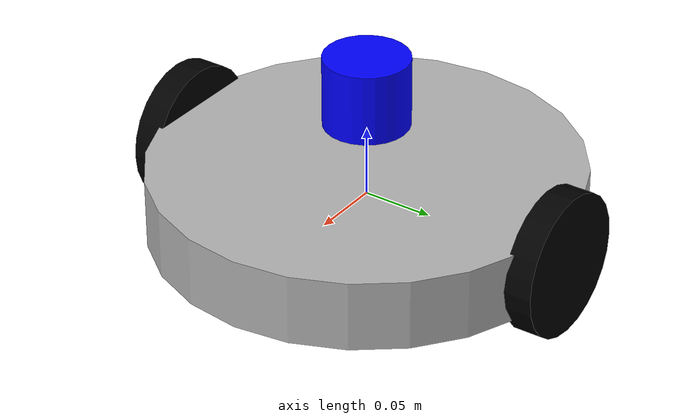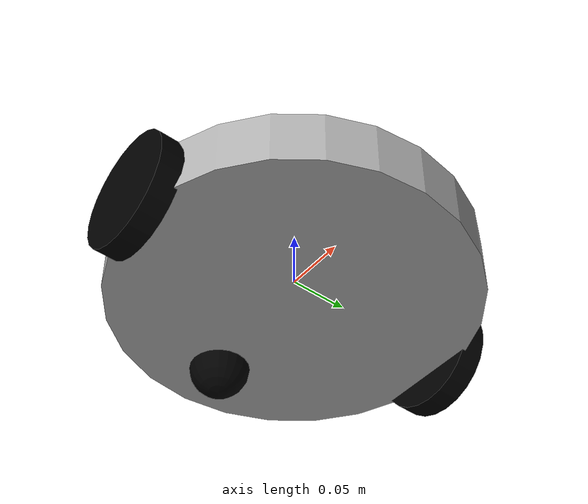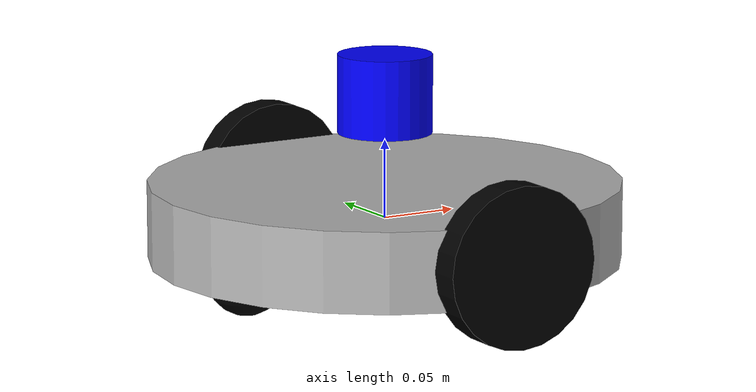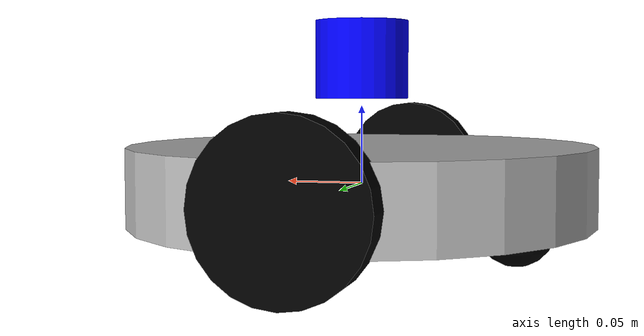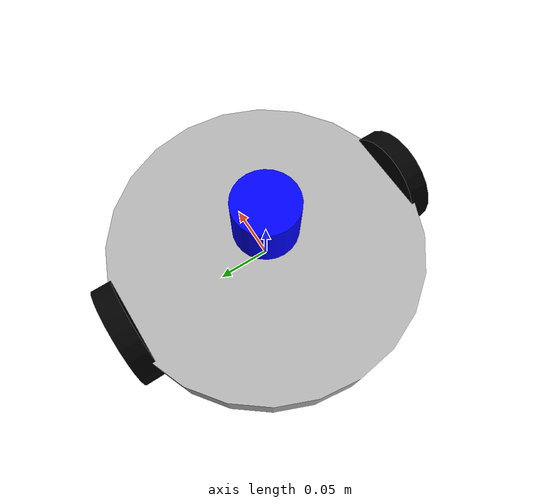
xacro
<?xml version="1.0"?>
<robot name="patrol_bot" xmlns:xacro="http://www.ros.org/wiki/xacro">

  <!-- Materials -->
  <material name="Gray">
    <color rgba="0.7 0.7 0.7 1.0"/>
  </material>

  <material name="Black">
    <color rgba="0.0 0.0 0.0 1.0"/>
  </material>

  <material name="Blue">
    <color rgba="0.0 0.0 1.0 1.0"/>
  </material>

  <!-- base link -->
  <link name="base_link">
    <visual>
      <geometry>
        <cylinder radius="0.15" length="0.05"/>
      </geometry>
      <material name="Gray"/>
    </visual>
    <collision>
      <geometry>
        <cylinder radius="0.15" length="0.05"/>
      </geometry>
    </collision>
    <inertial>
      <mass value="2.0"/>
      <inertia ixx="0.01" ixy="0.0" ixz="0.0"
               iyy="0.01" iyz="0.0"
               izz="0.02"/>
    </inertial>
  </link>

  <!--left wheel -->
  <link name="left_wheel_link">
    <visual>
      <geometry>
        <cylinder radius="0.05" length="0.02"/>
      </geometry>
      <origin xyz="0 0 0" rpy="1.5708 0 0"/>
      <material name="Black"/>
    </visual>
    <collision>
      <geometry>
        <cylinder radius="0.05" length="0.02"/>
      </geometry>
      <origin xyz="0 0 0" rpy="1.5708 0 0"/>
    </collision>
    <inertial>
      <mass value="0.2"/>
      <inertia ixx="0.001" ixy="0.0" ixz="0.0"
               iyy="0.001" iyz="0.0"
               izz="0.001"/>
    </inertial>
  </link>

  <!-- right wheel -->
  <link name="right_wheel_link">
    <visual>
      <geometry>
        <cylinder radius="0.05" length="0.02"/>
      </geometry>
      <origin xyz="0 0 0" rpy="1.5708 0 0"/>
      <material name="Black"/>
    </visual>
    <collision>
      <geometry>
        <cylinder radius="0.05" length="0.02"/>
      </geometry>
      <origin xyz="0 0 0" rpy="1.5708 0 0"/>
    </collision>
    <inertial>
      <mass value="0.2"/>
      <inertia ixx="0.001" ixy="0.0" ixz="0.0"
               iyy="0.001" iyz="0.0"
               izz="0.001"/>
    </inertial>
  </link>

  <!-- caster wheel -->
  <link name="caster_wheel_link">
    <visual>
      <geometry>
        <sphere radius="0.025"/> <!-- smaller than before -->
      </geometry>
      <material name="Black"/>
    </visual>
    <collision>
      <geometry>
        <sphere radius="0.025"/>
      </geometry>
    </collision>
    <inertial>
      <mass value="0.05"/>
      <inertia ixx="0.0001" ixy="0.0" ixz="0.0"
               iyy="0.0001" iyz="0.0"
               izz="0.0001"/>
    </inertial>
  </link>

  <!-- Gazebo lidar sensor  -->
  <link name="laser_link">
    <visual>
      <geometry>
        <cylinder radius="0.03" length="0.05"/>
      </geometry>
      <material name="Blue"/>
    </visual>
    <collision>
      <geometry>
        <cylinder radius="0.03" length="0.05"/>
      </geometry>
    </collision>
    <inertial>
      <mass value="0.1"/>
      <inertia ixx="0.0001" ixy="0.0" ixz="0.0"
               iyy="0.0001" iyz="0.0"
               izz="0.0001"/>
    </inertial>
  </link>

  <!-- Joints -->
  <joint name="left_wheel_joint" type="continuous">
    <parent link="base_link"/>
    <child link="left_wheel_link"/>
    <origin xyz="0 0.15 0" rpy="0 0 0"/>
    <axis xyz="0 1 0"/>
  </joint>

  <joint name="right_wheel_joint" type="continuous">
    <parent link="base_link"/>
    <child link="right_wheel_link"/>
    <origin xyz="0 -0.15 0" rpy="0 0 0"/>
    <axis xyz="0 1 0"/>
  </joint>

  <joint name="caster_wheel_joint" type="fixed">
    <parent link="base_link"/>
    <child link="caster_wheel_link"/>
    <origin xyz="-0.1 0 -0.025" rpy="0 0 0"/>
  </joint>

  <joint name="laser_joint" type="fixed">
    <parent link="base_link"/>
    <child link="laser_link"/>
    <origin xyz="0 0 0.08" rpy="0 0 0"/>
  </joint>

  <!-- Gazebo Differential Drive Plugin for controls (subscribed to cmd_vel) -->
  <!-- Documentation regarding options/topics can be found here... -->
  <!-- https://classic.gazebosim.org/tutorials?tut=ros_gzplugins#:~:text=plugin%3E%0A%3C/gazebo%3E-,Differential%20Drive,-Description%3A%20model -->
  <gazebo>
    <plugin name="diff_drive" filename="libgazebo_ros_diff_drive.so">

      <ros>
        <namespace>/</namespace>
      </ros>

      <!-- Wheel joints -->
      <left_joint>left_wheel_joint</left_joint>
      <right_joint>right_wheel_joint</right_joint>

      <!-- Robot geometry -->
      <wheel_separation>0.30</wheel_separation>
      <wheel_diameter>0.10</wheel_diameter>

      <!-- Frames -->
      <odom_frame>odom</odom_frame>
      <!-- Robot frame to calculate odometry from -->
      <base_frame>base_link</base_frame>

      <!-- Topics-->
      <!-- cmd_vel topic to receive/subscribe to commands -->
      <command_topic>cmd_vel</command_topic>
      <!-- Topic to publish nav_msgs -->
      <odometry_topic>odom</odometry_topic>

      <!-- Publishing -->
      <publish_odom>true</publish_odom>
      <publish_odom_tf>true</publish_odom_tf>

    </plugin>
  </gazebo>

  <!-- Gazebo Laser Sensor -->
  <gazebo reference="laser_link">
    <sensor type="ray" name="laser">
      <pose>0 0 0 0 0 0</pose>

      <ray>
        <scan>
          <horizontal>
            <samples>360</samples>
            <min_angle>-3.14159</min_angle>
            <max_angle>3.14159</max_angle>
          </horizontal>
        </scan>

        <range>
          <min>0.12</min>
          <max>10.0</max>
        </range>
      </ray>
    <plugin name="gazebo_ros_laser" filename="libgazebo_ros_ray_sensor.so">
	  <!-- Manually remapping laser plugin /out to /scan topic since nav2 expects scan -->
	  <ros>
		    <remapping>~/out:=scan</remapping>
	  </ros>
	    <frameName>laser_link</frameName>
    </plugin>

    </sensor>
  </gazebo>

</robot>
